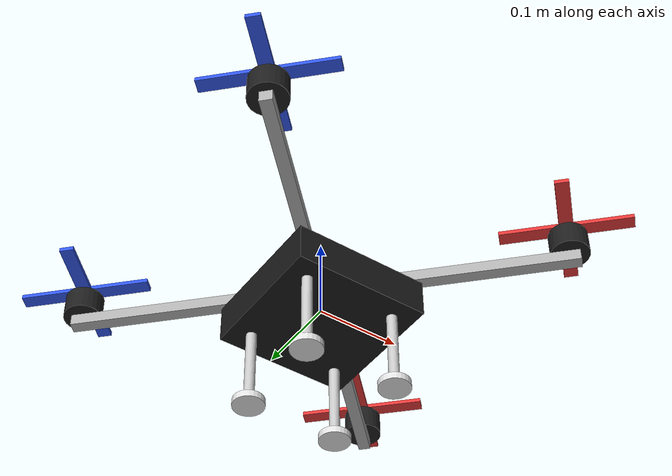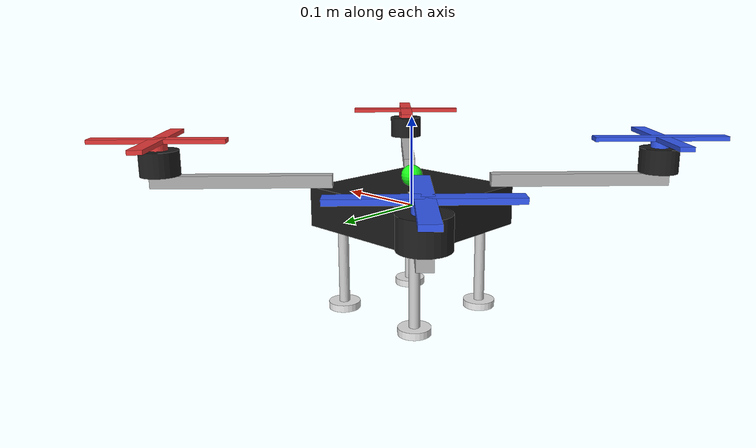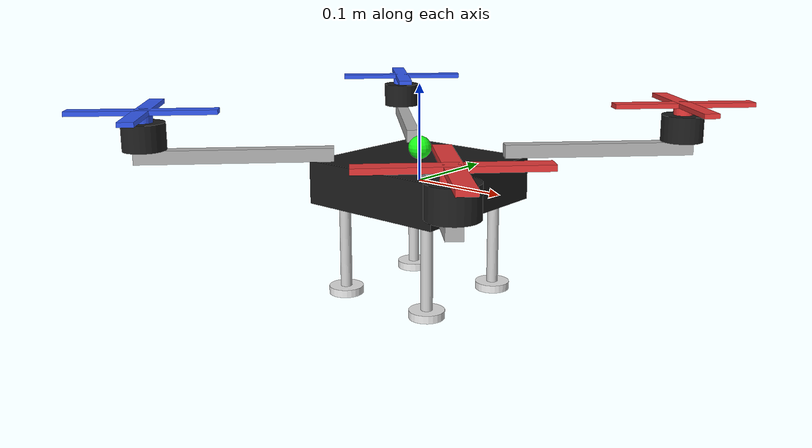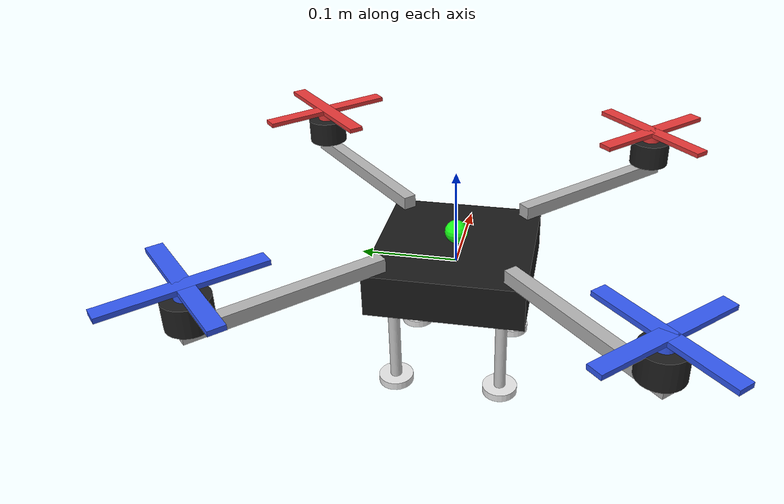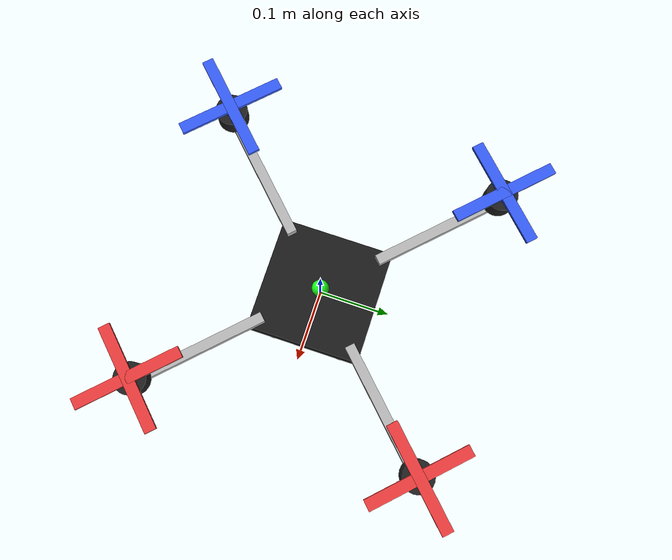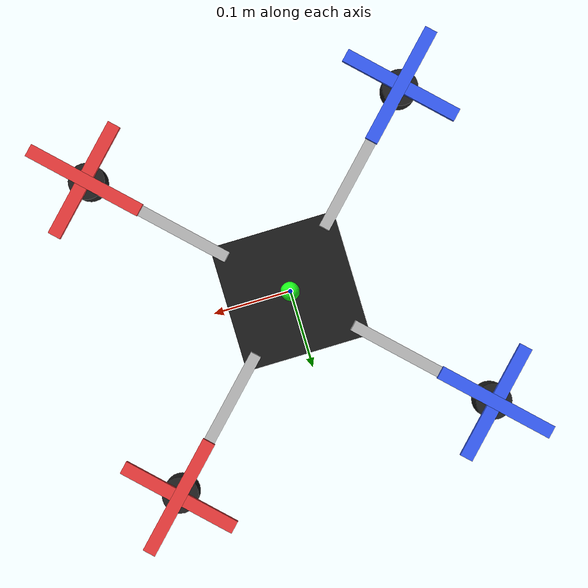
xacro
<?xml version="1.0"?>

<robot xmlns:xacro="http://www.ros.org/wiki/xacro" name="drone_x_led">

  <!-- 1. ARGUMENTOS DEL MODELO                                                -->

  <!--
    prefix permite crear varios drones iguales sin que se repitan los nombres
    de los links y joints.

    Ejemplos:
      prefix:=drone1_
      prefix:=drone2_
      prefix:=drone3_
  -->
  <xacro:arg name="prefix" default=""/>
  <xacro:property name="prefix" value="$(arg prefix)"/>

  <!-- 2. CONSTANTES GEOMÉTRICAS GENERALES                                     -->

  <!--
    Valor aproximado de cos(45º) y sin(45º).
    Se usa para colocar los brazos en diagonal, formando una X.
  -->
  <xacro:property name="diag" value="0.70710678"/>

  <!-- 3. DIMENSIONES DEL CUERPO CENTRAL                                       -->

  <!--
    El cuerpo central se representa como una caja.

    Ejes usados en RViz/URDF:
      X: delante / atrás
      Y: izquierda / derecha
      Z: arriba / abajo
  -->
  <xacro:property name="body_l" value="0.16"/>   <!-- Longitud del cuerpo en X -->
  <xacro:property name="body_w" value="0.16"/>   <!-- Anchura del cuerpo en Y  -->
  <xacro:property name="body_h" value="0.045"/>  <!-- Altura del cuerpo en Z   -->

  <!-- 4. DIMENSIONES DE LOS BRAZOS                                            -->

  <!--
    Cada brazo se representa como una barra rectangular.
    Los brazos salen desde el cuerpo hacia las cuatro esquinas.
  -->
  <xacro:property name="arm_l" value="0.20"/>       <!-- Longitud de cada brazo -->
  <xacro:property name="arm_w" value="0.014"/>      <!-- Grosor lateral del brazo -->
  <xacro:property name="arm_h" value="0.014"/>      <!-- Altura del brazo -->
  <xacro:property name="arm_inside" value="0.025"/> <!-- Parte del brazo que entra visualmente en el cuerpo -->

  <!--
    arm_center_offset calcula cuánto hay que desplazar el centro de cada brazo
    para que quede correctamente unido al cuerpo y orientado en diagonal.
  -->
  <xacro:property name="arm_center_offset" value="${(arm_l/2.0 - arm_inside) * diag}"/>

  <!--
    Altura a la que se colocan los brazos.
    Se sitúan encima del cuerpo central, no atravesando su centro.
  -->
  <xacro:property name="arm_z" value="${body_h/2.0 + arm_h/2.0}"/>

  <!-- 5. DIMENSIONES DE LOS MOTORES                                           -->

  <!--
    Cada motor se representa como un cilindro situado al final de cada brazo.
  -->
  <xacro:property name="motor_r" value="0.022"/>  <!-- Radio del cilindro del motor -->
  <xacro:property name="motor_h" value="0.028"/>  <!-- Altura del cilindro del motor -->

  <!-- 6. DIMENSIONES DE LAS HÉLICES                                           -->

  <xacro:property name="prop_l" value="0.15"/>      <!-- Longitud de cada pala -->
  <xacro:property name="prop_w" value="0.016"/>     <!-- Anchura de cada pala -->
  <xacro:property name="prop_h" value="0.005"/>     <!-- Grosor de cada pala -->
  <xacro:property name="prop_hub_r" value="0.010"/> <!-- Radio del buje central -->
  <xacro:property name="prop_hub_h" value="0.008"/> <!-- Altura del buje central -->

  <!-- 7. DIMENSIONES DE LAS CUATRO PATAS DE ATERRIZAJE                        -->

  <xacro:property name="leg_r" value="0.006"/>       <!-- Radio de cada pata vertical -->
  <xacro:property name="leg_h" value="0.090"/>       <!-- Altura de cada pata vertical -->
  <xacro:property name="foot_r" value="0.018"/>      <!-- Radio del pequeño pie inferior -->
  <xacro:property name="foot_h" value="0.008"/>      <!-- Altura del pequeño pie inferior -->

  <!--
    Posición de las patas respecto al centro del cuerpo.
    Se colocan cerca de las cuatro esquinas inferiores del cuerpo.
  -->
  <xacro:property name="leg_x" value="0.055"/>       <!-- Separación de la pata respecto al centro en X -->
  <xacro:property name="leg_y" value="0.055"/>       <!-- Separación de la pata respecto al centro en Y -->

  <!-- 8. DIMENSIONES DEL LED DE ESTADO                                        -->

  <!--
    El LED se representa como una esfera pequeña sobre la parte superior del dron.
    En RViz, el cambio dinámico de color puede representarse mejor con MarkerArray.
  -->
  <xacro:property name="led_r" value="0.012"/>

  <!-- 9. MATERIALES Y COLORES                                                 -->

  <!--
    Los materiales se aplican a las geometrías visuales.
    rgba = rojo verde azul alfa
    El alfa 1.0 indica que el objeto es totalmente opaco.
  -->

  <!-- Color oscuro para el cuerpo principal. -->
  <material name="body_mat">
    <color rgba="0.10 0.10 0.10 1.0"/>
  </material>

  <!-- Color gris para los brazos. -->
  <material name="arm_mat">
    <color rgba="0.70 0.70 0.70 1.0"/>
  </material>

  <!-- Color oscuro para los motores. -->
  <material name="motor_mat">
    <color rgba="0.12 0.12 0.12 1.0"/>
  </material>

  <!-- Color rojo para las hélices delanteras. Ayuda a identificar el frontal. -->
  <material name="front_prop_mat">
    <color rgba="0.90 0.22 0.22 1.0"/>
  </material>

  <!-- Color azul para las hélices traseras. Ayuda a identificar la parte trasera. -->
  <material name="rear_prop_mat">
    <color rgba="0.20 0.35 0.95 1.0"/>
  </material>

  <!-- Color gris claro para las patas de aterrizaje. -->
  <material name="leg_mat">
    <color rgba="0.80 0.80 0.80 1.0"/>
  </material>

  <!-- Color ligeramente más claro para los pies inferiores de apoyo. -->
  <material name="foot_mat">
    <color rgba="0.90 0.90 0.90 1.0"/>
  </material>

  <!-- Color base del LED físico dibujado en el Xacro. -->
  <material name="led_green_mat">
    <color rgba="0.10 1.00 0.10 1.0"/>
  </material>

  <!-- 10. MACRO DE INERCIA SIMPLE                                             -->

  <xacro:macro name="simple_inertial" params="mass">
    <inertial>
      <origin xyz="0 0 0" rpy="0 0 0"/>
      <mass value="${mass}"/>
      <inertia
        ixx="0.001" ixy="0.0" ixz="0.0"
        iyy="0.001" iyz="0.0"
        izz="0.001"/>
    </inertial>
  </xacro:macro>

  <!-- 11. CUERPO CENTRAL DEL DRON                                             -->

  <link name="${prefix}base_link">
    <visual>
      <geometry>
        <box size="${body_l} ${body_w} ${body_h}"/>
      </geometry>
      <material name="body_mat"/>
    </visual>

    <collision>
      <geometry>
        <box size="${body_l} ${body_w} ${body_h}"/>
      </geometry>
    </collision>

    <xacro:simple_inertial mass="1.2"/>
  </link>

  <!-- 12. MACRO PARA CREAR CADA BRAZO, MOTOR Y HÉLICE                         -->

  <xacro:macro name="arm_module" params="name x y yaw prop_material">

    <!-- 12.1. Brazo diagonal                                                 -->

    <!--
      Dibuja una barra rectangular que sale del cuerpo hacia una esquina.
      La barra está orientada mediante el yaw indicado en el joint.
    -->
    <link name="${prefix}${name}_arm_link">
      <visual>
        <geometry>
          <box size="${arm_l} ${arm_w} ${arm_h}"/>
        </geometry>
        <material name="arm_mat"/>
      </visual>

      <collision>
        <geometry>
          <box size="${arm_l} ${arm_w} ${arm_h}"/>
        </geometry>
      </collision>

      <xacro:simple_inertial mass="0.10"/>
    </link>

    <!--
      Une el brazo al cuerpo principal.
      El giro yaw coloca el brazo en diagonal.
    -->
    <joint name="${prefix}base_to_${name}_arm" type="fixed">
      <parent link="${prefix}base_link"/>
      <child link="${prefix}${name}_arm_link"/>
      <origin xyz="${x} ${y} ${arm_z}" rpy="0 0 ${yaw}"/>
    </joint>

    <!-- 12.2. Motor                                                          -->

    <!--
      Dibuja el motor como un cilindro vertical en el extremo exterior del brazo.
    -->
    <link name="${prefix}${name}_motor_link">
      <visual>
        <geometry>
          <cylinder radius="${motor_r}" length="${motor_h}"/>
        </geometry>
        <material name="motor_mat"/>
      </visual>

      <collision>
        <geometry>
          <cylinder radius="${motor_r}" length="${motor_h}"/>
        </geometry>
      </collision>

      <xacro:simple_inertial mass="0.08"/>
    </link>

    <!--
      Une el motor al extremo del brazo.
      Como el motor depende del frame del brazo, su posición local se indica
      respecto al centro del brazo.
    -->
    <joint name="${prefix}${name}_arm_to_motor" type="fixed">
      <parent link="${prefix}${name}_arm_link"/>
      <child link="${prefix}${name}_motor_link"/>
      <origin xyz="${arm_l/2.0 - motor_r/2.0} 0 ${arm_h/2.0 + motor_h/2.0}" rpy="0 0 0"/>
    </joint>

    <!-- 12.3. Buje central de la hélice                                      -->

    <!--
      Dibuja el pequeño cilindro central sobre el motor.
      Este buje sirve como punto visual donde se cruzan las palas.
    -->
    <link name="${prefix}${name}_hub_link">
      <visual>
        <geometry>
          <cylinder radius="${prop_hub_r}" length="${prop_hub_h}"/>
        </geometry>
        <material name="${prop_material}"/>
      </visual>

      <collision>
        <geometry>
          <cylinder radius="${prop_hub_r}" length="${prop_hub_h}"/>
        </geometry>
      </collision>

      <xacro:simple_inertial mass="0.01"/>
    </link>

    <!-- Une el buje de la hélice a la parte superior del motor. -->
    <joint name="${prefix}${name}_motor_to_hub" type="fixed">
      <parent link="${prefix}${name}_motor_link"/>
      <child link="${prefix}${name}_hub_link"/>
      <origin xyz="0 0 ${motor_h/2.0 + prop_hub_h/2.0}" rpy="0 0 0"/>
    </joint>

    <!-- 12.4. Primera pala de la hélice                                      -->

    <!--
      Dibuja una pala rectangular horizontal.
      Es una representación visual simplificada de la hélice.
    -->
    <link name="${prefix}${name}_blade1_link">
      <visual>
        <geometry>
          <box size="${prop_l} ${prop_w} ${prop_h}"/>
        </geometry>
        <material name="${prop_material}"/>
      </visual>

      <collision>
        <geometry>
          <box size="${prop_l} ${prop_w} ${prop_h}"/>
        </geometry>
      </collision>

      <xacro:simple_inertial mass="0.01"/>
    </link>

    <!-- Une la primera pala al buje central. -->
    <joint name="${prefix}${name}_hub_to_blade1" type="fixed">
      <parent link="${prefix}${name}_hub_link"/>
      <child link="${prefix}${name}_blade1_link"/>
      <origin xyz="0 0 ${prop_hub_h/2.0 + prop_h/2.0}" rpy="0 0 0"/>
    </joint>

    <!-- 12.5. Segunda pala de la hélice                                      -->

    <!--
      Dibuja una segunda pala rectangular.
      Está girada 90 grados respecto a la primera para simular una hélice cruzada.
    -->
    <link name="${prefix}${name}_blade2_link">
      <visual>
        <geometry>
          <box size="${prop_l} ${prop_w} ${prop_h}"/>
        </geometry>
        <material name="${prop_material}"/>
      </visual>

      <collision>
        <geometry>
          <box size="${prop_l} ${prop_w} ${prop_h}"/>
        </geometry>
      </collision>

      <xacro:simple_inertial mass="0.01"/>
    </link>

    <!--
      Une la segunda pala al buje central y la gira 90 grados en Z.
      1.5708 radianes equivalen aproximadamente a 90 grados.
    -->
    <joint name="${prefix}${name}_hub_to_blade2" type="fixed">
      <parent link="${prefix}${name}_hub_link"/>
      <child link="${prefix}${name}_blade2_link"/>
      <origin xyz="0 0 ${prop_hub_h/2.0 + prop_h/2.0}" rpy="0 0 1.5708"/>
    </joint>

  </xacro:macro>

  <!-- 13. MACRO PARA CREAR UNA PATA DE ATERRIZAJE                             -->

  <xacro:macro name="landing_leg" params="name x y">

    <!--
      Link completo de la pata.
      El origen del link se coloca en el centro del cilindro vertical.
    -->
    <link name="${prefix}${name}_leg_link">

      <!-- Cilindro vertical de la pata                                    -->
      <!--
        Como los cilindros URDF se dibujan por defecto alineados con el eje Z,
        aquí NO giramos el cilindro. Así la pata queda vertical.
      -->
      <visual name="${prefix}${name}_vertical_leg_visual">
        <origin xyz="0 0 0" rpy="0 0 0"/>
        <geometry>
          <cylinder radius="${leg_r}" length="${leg_h}"/>
        </geometry>
        <material name="leg_mat"/>
      </visual>

      <collision name="${prefix}${name}_vertical_leg_collision">
        <origin xyz="0 0 0" rpy="0 0 0"/>
        <geometry>
          <cylinder radius="${leg_r}" length="${leg_h}"/>
        </geometry>
      </collision>

      <!-- Pie inferior de apoyo                                           -->
      <!--
        Este segundo cilindro es más ancho y va debajo de la pata.
        Su función es que se vea claramente que hay cuatro apoyos separados.
      -->
      <visual name="${prefix}${name}_foot_visual">
        <origin xyz="0 0 ${-leg_h/2.0 - foot_h/2.0}" rpy="0 0 0"/>
        <geometry>
          <cylinder radius="${foot_r}" length="${foot_h}"/>
        </geometry>
        <material name="foot_mat"/>
      </visual>

      <collision name="${prefix}${name}_foot_collision">
        <origin xyz="0 0 ${-leg_h/2.0 - foot_h/2.0}" rpy="0 0 0"/>
        <geometry>
          <cylinder radius="${foot_r}" length="${foot_h}"/>
        </geometry>
      </collision>

      <xacro:simple_inertial mass="0.035"/>
    </link>

    <joint name="${prefix}base_to_${name}_leg" type="fixed">
      <parent link="${prefix}base_link"/>
      <child link="${prefix}${name}_leg_link"/>
      <origin xyz="${x} ${y} ${-body_h/2.0 - leg_h/2.0}" rpy="0 0 0"/>
    </joint>

  </xacro:macro>

  <!-- 14. LED SUPERIOR DE ESTADO                                              -->

  <link name="${prefix}status_led_link">
    <visual>
      <geometry>
        <sphere radius="${led_r}"/>
      </geometry>
      <material name="led_green_mat"/>
    </visual>

    <collision>
      <geometry>
        <sphere radius="${led_r}"/>
      </geometry>
    </collision>

    <xacro:simple_inertial mass="0.01"/>
  </link>

  <!-- Une el LED a la parte superior del cuerpo. -->
  <joint name="${prefix}base_to_status_led" type="fixed">
    <parent link="${prefix}base_link"/>
    <child link="${prefix}status_led_link"/>
    <origin xyz="0 0 ${body_h/2.0 + led_r}" rpy="0 0 0"/>
  </joint>

  <!-- 15. INSTANCIACIÓN DE LOS CUATRO BRAZOS, MOTORES Y HÉLICES               -->

  <xacro:arm_module
    name="front_left"
    x="${ body_l/2.0 + arm_center_offset }"
    y="${ body_w/2.0 + arm_center_offset }"
    yaw="0.785398"
    prop_material="front_prop_mat"/>

  <xacro:arm_module
    name="front_right"
    x="${ body_l/2.0 + arm_center_offset }"
    y="${ -body_w/2.0 - arm_center_offset }"
    yaw="-0.785398"
    prop_material="front_prop_mat"/>

  <xacro:arm_module
    name="rear_left"
    x="${ -body_l/2.0 - arm_center_offset }"
    y="${ body_w/2.0 + arm_center_offset }"
    yaw="2.356194"
    prop_material="rear_prop_mat"/>

  <xacro:arm_module
    name="rear_right"
    x="${ -body_l/2.0 - arm_center_offset }"
    y="${ -body_w/2.0 - arm_center_offset }"
    yaw="-2.356194"
    prop_material="rear_prop_mat"/>

  <!-- 16. INSTANCIACIÓN DE LAS CUATRO PATAS DE ATERRIZAJE                     -->

  <xacro:landing_leg name="front_left"  x="${ leg_x}"  y="${ leg_y}"/>
  <xacro:landing_leg name="front_right" x="${ leg_x}"  y="${-leg_y}"/>
  <xacro:landing_leg name="rear_left"   x="${-leg_x}"  y="${ leg_y}"/>
  <xacro:landing_leg name="rear_right"  x="${-leg_x}"  y="${-leg_y}"/>

</robot>
